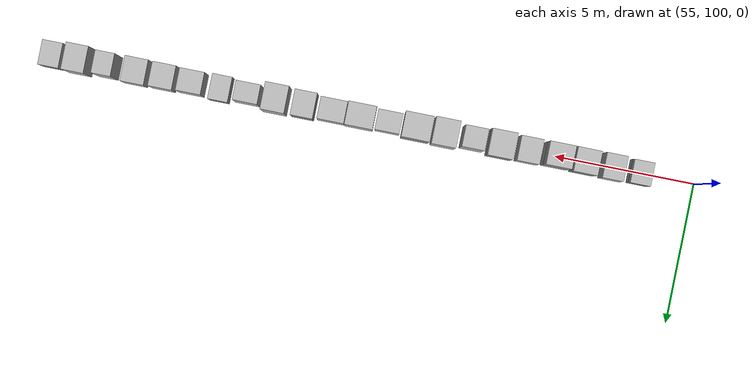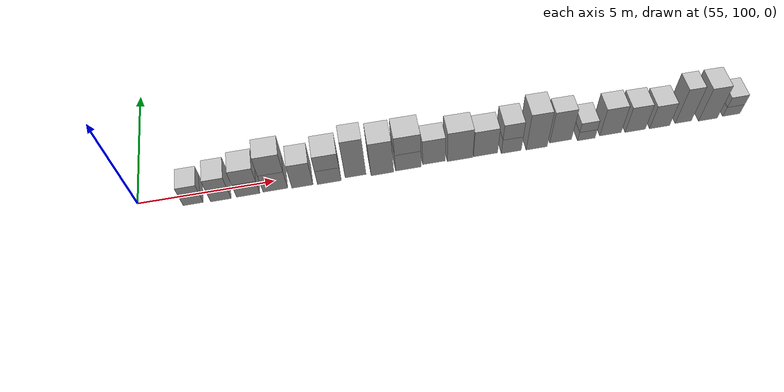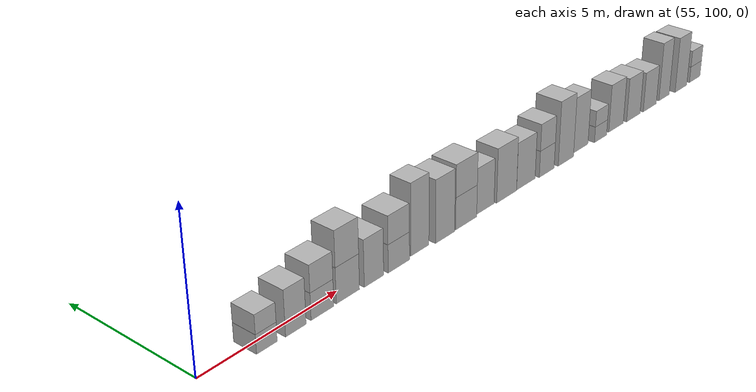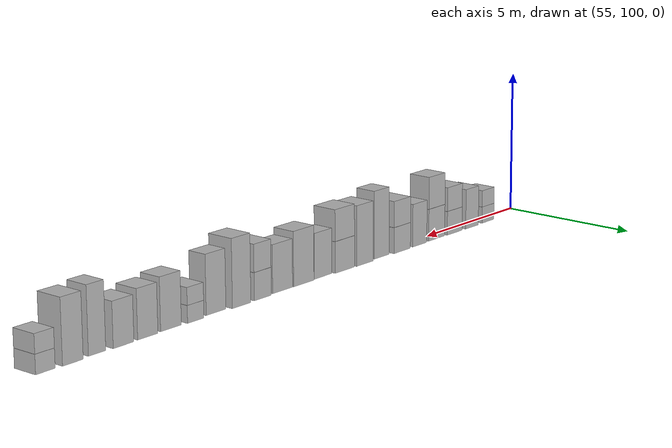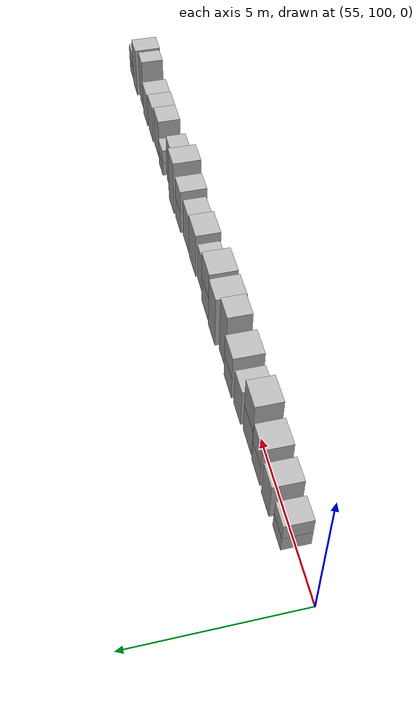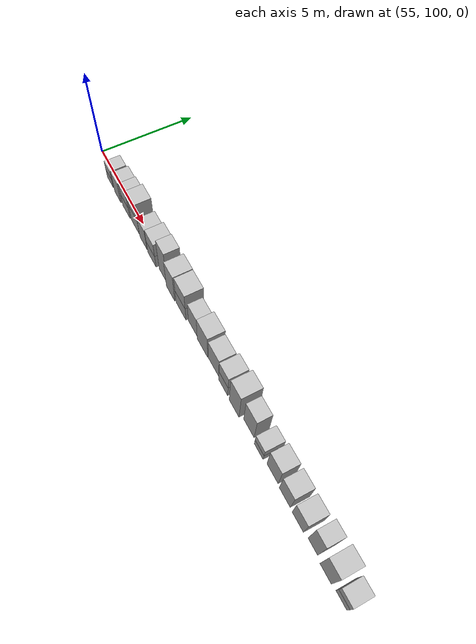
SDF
<sdf version="1.5">
 <world name="default">
  <model name="ground_plane">
   <static>true</static>
   <link name="link">
    <collision name="collision">
     <geometry><plane><normal>0 0 1</normal><size>250 250</size></plane></geometry>
     <surface><friction><ode><mu>1</mu><mu2>1</mu2></ode></friction></surface>
    </collision>
    <visual name="grass">
     <cast_shadows>false</cast_shadows>
     <geometry><mesh><uri>file://grass_plane/meshes/grass_plane.dae</uri></mesh></geometry>
    </visual>
   </link>
  </model>
  <model name="Cardboard_box_157">
   <link name="link_0">
    <pose>57 100 0 0 0 0</pose>
    <inertial>
     <mass>1</mass>
     <inertia>
      <ixx>0.166667</ixx>
      <ixy>0</ixy>
      <ixz>0</ixz>
      <iyy>0.166667</iyy>
      <iyz>0</iyz>
      <izz>0.166667</izz>
     </inertia>
    </inertial>
    <collision name="collision">
     <geometry>
      <mesh>
       <uri>model://Cardboard_box/meshes/cardboard_box.dae</uri>
       <scale>1.81420809748 2.10381561603 1.49682544511</scale>
      </mesh>
     </geometry>
    </collision>
    <visual name="visual">
     <geometry>
      <mesh>
       <uri>model://Cardboard_box/meshes/cardboard_box.dae</uri>
       <scale>1.81420809748 2.10381561603 1.49682544511</scale>
      </mesh>
     </geometry>
    </visual>
   </link>
   <static>1</static>
  </model>
  <model name="Cardboard_box_top_157">
   <link name="link_0">
    <pose>57 100 0.598730178044 0 0 0</pose>
    <inertial>
     <mass>1</mass>
     <inertia>
      <ixx>0.166667</ixx>
      <ixy>0</ixy>
      <ixz>0</ixz>
      <iyy>0.166667</iyy>
      <iyz>0</iyz>
      <izz>0.166667</izz>
     </inertia>
    </inertial>
    <collision name="collision">
     <geometry>
      <mesh>
       <uri>model://Cardboard_box/meshes/cardboard_box.dae</uri>
       <scale>1.81420809748 2.10381561603 1.49682544511</scale>
      </mesh>
     </geometry>
    </collision>
    <visual name="visual">
     <geometry>
      <mesh>
       <uri>model://Cardboard_box/meshes/cardboard_box.dae</uri>
       <scale>1.81420809748 2.10381561603 1.49682544511</scale>
      </mesh>
     </geometry>
    </visual>
   </link>
   <static>1</static>
  </model>
  <model name="Cardboard_box_158">
   <link name="link_0">
    <pose>58 100 0 0 0 0</pose>
    <inertial>
     <mass>1</mass>
     <inertia>
      <ixx>0.166667</ixx>
      <ixy>0</ixy>
      <ixz>0</ixz>
      <iyy>0.166667</iyy>
      <iyz>0</iyz>
      <izz>0.166667</izz>
     </inertia>
    </inertial>
    <collision name="collision">
     <geometry>
      <mesh>
       <uri>model://Cardboard_box/meshes/cardboard_box.dae</uri>
       <scale>1.87514105076 2.2593879428 3.61103689173</scale>
      </mesh>
     </geometry>
    </collision>
    <visual name="visual">
     <geometry>
      <mesh>
       <uri>model://Cardboard_box/meshes/cardboard_box.dae</uri>
       <scale>1.87514105076 2.2593879428 3.61103689173</scale>
      </mesh>
     </geometry>
    </visual>
   </link>
   <static>1</static>
  </model>
  <model name="Cardboard_box_159">
   <link name="link_0">
    <pose>59 100 0 0 0 0</pose>
    <inertial>
     <mass>1</mass>
     <inertia>
      <ixx>0.166667</ixx>
      <ixy>0</ixy>
      <ixz>0</ixz>
      <iyy>0.166667</iyy>
      <iyz>0</iyz>
      <izz>0.166667</izz>
     </inertia>
    </inertial>
    <collision name="collision">
     <geometry>
      <mesh>
       <uri>model://Cardboard_box/meshes/cardboard_box.dae</uri>
       <scale>2.15328613398 2.17790629205 2.13629660906</scale>
      </mesh>
     </geometry>
    </collision>
    <visual name="visual">
     <geometry>
      <mesh>
       <uri>model://Cardboard_box/meshes/cardboard_box.dae</uri>
       <scale>2.15328613398 2.17790629205 2.13629660906</scale>
      </mesh>
     </geometry>
    </visual>
   </link>
   <static>1</static>
  </model>
  <model name="Cardboard_box_top_159">
   <link name="link_0">
    <pose>59 100 0.854518643624 0 0 0</pose>
    <inertial>
     <mass>1</mass>
     <inertia>
      <ixx>0.166667</ixx>
      <ixy>0</ixy>
      <ixz>0</ixz>
      <iyy>0.166667</iyy>
      <iyz>0</iyz>
      <izz>0.166667</izz>
     </inertia>
    </inertial>
    <collision name="collision">
     <geometry>
      <mesh>
       <uri>model://Cardboard_box/meshes/cardboard_box.dae</uri>
       <scale>2.15328613398 2.17790629205 2.13629660906</scale>
      </mesh>
     </geometry>
    </collision>
    <visual name="visual">
     <geometry>
      <mesh>
       <uri>model://Cardboard_box/meshes/cardboard_box.dae</uri>
       <scale>2.15328613398 2.17790629205 2.13629660906</scale>
      </mesh>
     </geometry>
    </visual>
   </link>
   <static>1</static>
  </model>
  <model name="Cardboard_box_160">
   <link name="link_0">
    <pose>60 100 0 0 0 0</pose>
    <inertial>
     <mass>1</mass>
     <inertia>
      <ixx>0.166667</ixx>
      <ixy>0</ixy>
      <ixz>0</ixz>
      <iyy>0.166667</iyy>
      <iyz>0</iyz>
      <izz>0.166667</izz>
     </inertia>
    </inertial>
    <collision name="collision">
     <geometry>
      <mesh>
       <uri>model://Cardboard_box/meshes/cardboard_box.dae</uri>
       <scale>2.28505861333 2.05998489167 2.84069622091</scale>
      </mesh>
     </geometry>
    </collision>
    <visual name="visual">
     <geometry>
      <mesh>
       <uri>model://Cardboard_box/meshes/cardboard_box.dae</uri>
       <scale>2.28505861333 2.05998489167 2.84069622091</scale>
      </mesh>
     </geometry>
    </visual>
   </link>
   <static>1</static>
  </model>
  <model name="Cardboard_box_top_160">
   <link name="link_0">
    <pose>60 100 1.13627848837 0 0 0</pose>
    <inertial>
     <mass>1</mass>
     <inertia>
      <ixx>0.166667</ixx>
      <ixy>0</ixy>
      <ixz>0</ixz>
      <iyy>0.166667</iyy>
      <iyz>0</iyz>
      <izz>0.166667</izz>
     </inertia>
    </inertial>
    <collision name="collision">
     <geometry>
      <mesh>
       <uri>model://Cardboard_box/meshes/cardboard_box.dae</uri>
       <scale>2.28505861333 2.05998489167 2.84069622091</scale>
      </mesh>
     </geometry>
    </collision>
    <visual name="visual">
     <geometry>
      <mesh>
       <uri>model://Cardboard_box/meshes/cardboard_box.dae</uri>
       <scale>2.28505861333 2.05998489167 2.84069622091</scale>
      </mesh>
     </geometry>
    </visual>
   </link>
   <static>1</static>
  </model>
  <model name="Cardboard_box_161">
   <link name="link_0">
    <pose>61 100 0 0 0 0</pose>
    <inertial>
     <mass>1</mass>
     <inertia>
      <ixx>0.166667</ixx>
      <ixy>0</ixy>
      <ixz>0</ixz>
      <iyy>0.166667</iyy>
      <iyz>0</iyz>
      <izz>0.166667</izz>
     </inertia>
    </inertial>
    <collision name="collision">
     <geometry>
      <mesh>
       <uri>model://Cardboard_box/meshes/cardboard_box.dae</uri>
       <scale>1.9775556429 2.23507939977 3.77298976431</scale>
      </mesh>
     </geometry>
    </collision>
    <visual name="visual">
     <geometry>
      <mesh>
       <uri>model://Cardboard_box/meshes/cardboard_box.dae</uri>
       <scale>1.9775556429 2.23507939977 3.77298976431</scale>
      </mesh>
     </geometry>
    </visual>
   </link>
   <static>1</static>
  </model>
  <model name="Cardboard_box_162">
   <link name="link_0">
    <pose>62 100 0 0 0 0</pose>
    <inertial>
     <mass>1</mass>
     <inertia>
      <ixx>0.166667</ixx>
      <ixy>0</ixy>
      <ixz>0</ixz>
      <iyy>0.166667</iyy>
      <iyz>0</iyz>
      <izz>0.166667</izz>
     </inertia>
    </inertial>
    <collision name="collision">
     <geometry>
      <mesh>
       <uri>model://Cardboard_box/meshes/cardboard_box.dae</uri>
       <scale>2.25082021121 2.36605081054 2.27832228173</scale>
      </mesh>
     </geometry>
    </collision>
    <visual name="visual">
     <geometry>
      <mesh>
       <uri>model://Cardboard_box/meshes/cardboard_box.dae</uri>
       <scale>2.25082021121 2.36605081054 2.27832228173</scale>
      </mesh>
     </geometry>
    </visual>
   </link>
   <static>1</static>
  </model>
  <model name="Cardboard_box_top_162">
   <link name="link_0">
    <pose>62 100 0.911328912691 0 0 0</pose>
    <inertial>
     <mass>1</mass>
     <inertia>
      <ixx>0.166667</ixx>
      <ixy>0</ixy>
      <ixz>0</ixz>
      <iyy>0.166667</iyy>
      <iyz>0</iyz>
      <izz>0.166667</izz>
     </inertia>
    </inertial>
    <collision name="collision">
     <geometry>
      <mesh>
       <uri>model://Cardboard_box/meshes/cardboard_box.dae</uri>
       <scale>2.25082021121 2.36605081054 2.27832228173</scale>
      </mesh>
     </geometry>
    </collision>
    <visual name="visual">
     <geometry>
      <mesh>
       <uri>model://Cardboard_box/meshes/cardboard_box.dae</uri>
       <scale>2.25082021121 2.36605081054 2.27832228173</scale>
      </mesh>
     </geometry>
    </visual>
   </link>
   <static>1</static>
  </model>
  <model name="Cardboard_box_163">
   <link name="link_0">
    <pose>63 100 0 0 0 0</pose>
    <inertial>
     <mass>1</mass>
     <inertia>
      <ixx>0.166667</ixx>
      <ixy>0</ixy>
      <ixz>0</ixz>
      <iyy>0.166667</iyy>
      <iyz>0</iyz>
      <izz>0.166667</izz>
     </inertia>
    </inertial>
    <collision name="collision">
     <geometry>
      <mesh>
       <uri>model://Cardboard_box/meshes/cardboard_box.dae</uri>
       <scale>1.99134031903 1.91318414073 5.89176702969</scale>
      </mesh>
     </geometry>
    </collision>
    <visual name="visual">
     <geometry>
      <mesh>
       <uri>model://Cardboard_box/meshes/cardboard_box.dae</uri>
       <scale>1.99134031903 1.91318414073 5.89176702969</scale>
      </mesh>
     </geometry>
    </visual>
   </link>
   <static>1</static>
  </model>
  <model name="Cardboard_box_164">
   <link name="link_0">
    <pose>64 100 0 0 0 0</pose>
    <inertial>
     <mass>1</mass>
     <inertia>
      <ixx>0.166667</ixx>
      <ixy>0</ixy>
      <ixz>0</ixz>
      <iyy>0.166667</iyy>
      <iyz>0</iyz>
      <izz>0.166667</izz>
     </inertia>
    </inertial>
    <collision name="collision">
     <geometry>
      <mesh>
       <uri>model://Cardboard_box/meshes/cardboard_box.dae</uri>
       <scale>2.16510713637 2.40100795066 5.20261111876</scale>
      </mesh>
     </geometry>
    </collision>
    <visual name="visual">
     <geometry>
      <mesh>
       <uri>model://Cardboard_box/meshes/cardboard_box.dae</uri>
       <scale>2.16510713637 2.40100795066 5.20261111876</scale>
      </mesh>
     </geometry>
    </visual>
   </link>
   <static>1</static>
  </model>
  <model name="Cardboard_box_165">
   <link name="link_0">
    <pose>65 100 0 0 0 0</pose>
    <inertial>
     <mass>1</mass>
     <inertia>
      <ixx>0.166667</ixx>
      <ixy>0</ixy>
      <ixz>0</ixz>
      <iyy>0.166667</iyy>
      <iyz>0</iyz>
      <izz>0.166667</izz>
     </inertia>
    </inertial>
    <collision name="collision">
     <geometry>
      <mesh>
       <uri>model://Cardboard_box/meshes/cardboard_box.dae</uri>
       <scale>2.48320914607 2.26290085305 2.68920703582</scale>
      </mesh>
     </geometry>
    </collision>
    <visual name="visual">
     <geometry>
      <mesh>
       <uri>model://Cardboard_box/meshes/cardboard_box.dae</uri>
       <scale>2.48320914607 2.26290085305 2.68920703582</scale>
      </mesh>
     </geometry>
    </visual>
   </link>
   <static>1</static>
  </model>
  <model name="Cardboard_box_top_165">
   <link name="link_0">
    <pose>65 100 1.07568281433 0 0 0</pose>
    <inertial>
     <mass>1</mass>
     <inertia>
      <ixx>0.166667</ixx>
      <ixy>0</ixy>
      <ixz>0</ixz>
      <iyy>0.166667</iyy>
      <iyz>0</iyz>
      <izz>0.166667</izz>
     </inertia>
    </inertial>
    <collision name="collision">
     <geometry>
      <mesh>
       <uri>model://Cardboard_box/meshes/cardboard_box.dae</uri>
       <scale>2.48320914607 2.26290085305 2.68920703582</scale>
      </mesh>
     </geometry>
    </collision>
    <visual name="visual">
     <geometry>
      <mesh>
       <uri>model://Cardboard_box/meshes/cardboard_box.dae</uri>
       <scale>2.48320914607 2.26290085305 2.68920703582</scale>
      </mesh>
     </geometry>
    </visual>
   </link>
   <static>1</static>
  </model>
  <model name="Cardboard_box_166">
   <link name="link_0">
    <pose>66 100 0 0 0 0</pose>
    <inertial>
     <mass>1</mass>
     <inertia>
      <ixx>0.166667</ixx>
      <ixy>0</ixy>
      <ixz>0</ixz>
      <iyy>0.166667</iyy>
      <iyz>0</iyz>
      <izz>0.166667</izz>
     </inertia>
    </inertial>
    <collision name="collision">
     <geometry>
      <mesh>
       <uri>model://Cardboard_box/meshes/cardboard_box.dae</uri>
       <scale>2.20039333724 1.83339694124 3.85831099505</scale>
      </mesh>
     </geometry>
    </collision>
    <visual name="visual">
     <geometry>
      <mesh>
       <uri>model://Cardboard_box/meshes/cardboard_box.dae</uri>
       <scale>2.20039333724 1.83339694124 3.85831099505</scale>
      </mesh>
     </geometry>
    </visual>
   </link>
   <static>1</static>
  </model>
  <model name="Cardboard_box_167">
   <link name="link_0">
    <pose>67 100 0 0 0 0</pose>
    <inertial>
     <mass>1</mass>
     <inertia>
      <ixx>0.166667</ixx>
      <ixy>0</ixy>
      <ixz>0</ixz>
      <iyy>0.166667</iyy>
      <iyz>0</iyz>
      <izz>0.166667</izz>
     </inertia>
    </inertial>
    <collision name="collision">
     <geometry>
      <mesh>
       <uri>model://Cardboard_box/meshes/cardboard_box.dae</uri>
       <scale>2.49800297952 2.06982349839 4.61272780405</scale>
      </mesh>
     </geometry>
    </collision>
    <visual name="visual">
     <geometry>
      <mesh>
       <uri>model://Cardboard_box/meshes/cardboard_box.dae</uri>
       <scale>2.49800297952 2.06982349839 4.61272780405</scale>
      </mesh>
     </geometry>
    </visual>
   </link>
   <static>1</static>
  </model>
  <model name="Cardboard_box_168">
   <link name="link_0">
    <pose>68 100 0 0 0 0</pose>
    <inertial>
     <mass>1</mass>
     <inertia>
      <ixx>0.166667</ixx>
      <ixy>0</ixy>
      <ixz>0</ixz>
      <iyy>0.166667</iyy>
      <iyz>0</iyz>
      <izz>0.166667</izz>
     </inertia>
    </inertial>
    <collision name="collision">
     <geometry>
      <mesh>
       <uri>model://Cardboard_box/meshes/cardboard_box.dae</uri>
       <scale>2.38917256784 1.97683687255 4.03550090378</scale>
      </mesh>
     </geometry>
    </collision>
    <visual name="visual">
     <geometry>
      <mesh>
       <uri>model://Cardboard_box/meshes/cardboard_box.dae</uri>
       <scale>2.38917256784 1.97683687255 4.03550090378</scale>
      </mesh>
     </geometry>
    </visual>
   </link>
   <static>1</static>
  </model>
  <model name="Cardboard_box_169">
   <link name="link_0">
    <pose>69 100 0 0 0 0</pose>
    <inertial>
     <mass>1</mass>
     <inertia>
      <ixx>0.166667</ixx>
      <ixy>0</ixy>
      <ixz>0</ixz>
      <iyy>0.166667</iyy>
      <iyz>0</iyz>
      <izz>0.166667</izz>
     </inertia>
    </inertial>
    <collision name="collision">
     <geometry>
      <mesh>
       <uri>model://Cardboard_box/meshes/cardboard_box.dae</uri>
       <scale>1.98100161813 2.2942295248 2.29737505421</scale>
      </mesh>
     </geometry>
    </collision>
    <visual name="visual">
     <geometry>
      <mesh>
       <uri>model://Cardboard_box/meshes/cardboard_box.dae</uri>
       <scale>1.98100161813 2.2942295248 2.29737505421</scale>
      </mesh>
     </geometry>
    </visual>
   </link>
   <static>1</static>
  </model>
  <model name="Cardboard_box_top_169">
   <link name="link_0">
    <pose>69 100 0.918950021684 0 0 0</pose>
    <inertial>
     <mass>1</mass>
     <inertia>
      <ixx>0.166667</ixx>
      <ixy>0</ixy>
      <ixz>0</ixz>
      <iyy>0.166667</iyy>
      <iyz>0</iyz>
      <izz>0.166667</izz>
     </inertia>
    </inertial>
    <collision name="collision">
     <geometry>
      <mesh>
       <uri>model://Cardboard_box/meshes/cardboard_box.dae</uri>
       <scale>1.98100161813 2.2942295248 2.29737505421</scale>
      </mesh>
     </geometry>
    </collision>
    <visual name="visual">
     <geometry>
      <mesh>
       <uri>model://Cardboard_box/meshes/cardboard_box.dae</uri>
       <scale>1.98100161813 2.2942295248 2.29737505421</scale>
      </mesh>
     </geometry>
    </visual>
   </link>
   <static>1</static>
  </model>
  <model name="Cardboard_box_170">
   <link name="link_0">
    <pose>70 100 0 0 0 0</pose>
    <inertial>
     <mass>1</mass>
     <inertia>
      <ixx>0.166667</ixx>
      <ixy>0</ixy>
      <ixz>0</ixz>
      <iyy>0.166667</iyy>
      <iyz>0</iyz>
      <izz>0.166667</izz>
     </inertia>
    </inertial>
    <collision name="collision">
     <geometry>
      <mesh>
       <uri>model://Cardboard_box/meshes/cardboard_box.dae</uri>
       <scale>2.10145909895 2.41661046187 5.63940332309</scale>
      </mesh>
     </geometry>
    </collision>
    <visual name="visual">
     <geometry>
      <mesh>
       <uri>model://Cardboard_box/meshes/cardboard_box.dae</uri>
       <scale>2.10145909895 2.41661046187 5.63940332309</scale>
      </mesh>
     </geometry>
    </visual>
   </link>
   <static>1</static>
  </model>
  <model name="Cardboard_box_171">
   <link name="link_0">
    <pose>71 100 0 0 0 0</pose>
    <inertial>
     <mass>1</mass>
     <inertia>
      <ixx>0.166667</ixx>
      <ixy>0</ixy>
      <ixz>0</ixz>
      <iyy>0.166667</iyy>
      <iyz>0</iyz>
      <izz>0.166667</izz>
     </inertia>
    </inertial>
    <collision name="collision">
     <geometry>
      <mesh>
       <uri>model://Cardboard_box/meshes/cardboard_box.dae</uri>
       <scale>2.18775535099 1.72834573184 4.88569953345</scale>
      </mesh>
     </geometry>
    </collision>
    <visual name="visual">
     <geometry>
      <mesh>
       <uri>model://Cardboard_box/meshes/cardboard_box.dae</uri>
       <scale>2.18775535099 1.72834573184 4.88569953345</scale>
      </mesh>
     </geometry>
    </visual>
   </link>
   <static>1</static>
  </model>
  <model name="Cardboard_box_172">
   <link name="link_0">
    <pose>72 100 0 0 0 0</pose>
    <inertial>
     <mass>1</mass>
     <inertia>
      <ixx>0.166667</ixx>
      <ixy>0</ixy>
      <ixz>0</ixz>
      <iyy>0.166667</iyy>
      <iyz>0</iyz>
      <izz>0.166667</izz>
     </inertia>
    </inertial>
    <collision name="collision">
     <geometry>
      <mesh>
       <uri>model://Cardboard_box/meshes/cardboard_box.dae</uri>
       <scale>1.77810968646 2.27432422572 1.41492613479</scale>
      </mesh>
     </geometry>
    </collision>
    <visual name="visual">
     <geometry>
      <mesh>
       <uri>model://Cardboard_box/meshes/cardboard_box.dae</uri>
       <scale>1.77810968646 2.27432422572 1.41492613479</scale>
      </mesh>
     </geometry>
    </visual>
   </link>
   <static>1</static>
  </model>
  <model name="Cardboard_box_top_172">
   <link name="link_0">
    <pose>72 100 0.565970453914 0 0 0</pose>
    <inertial>
     <mass>1</mass>
     <inertia>
      <ixx>0.166667</ixx>
      <ixy>0</ixy>
      <ixz>0</ixz>
      <iyy>0.166667</iyy>
      <iyz>0</iyz>
      <izz>0.166667</izz>
     </inertia>
    </inertial>
    <collision name="collision">
     <geometry>
      <mesh>
       <uri>model://Cardboard_box/meshes/cardboard_box.dae</uri>
       <scale>1.77810968646 2.27432422572 1.41492613479</scale>
      </mesh>
     </geometry>
    </collision>
    <visual name="visual">
     <geometry>
      <mesh>
       <uri>model://Cardboard_box/meshes/cardboard_box.dae</uri>
       <scale>1.77810968646 2.27432422572 1.41492613479</scale>
      </mesh>
     </geometry>
    </visual>
   </link>
   <static>1</static>
  </model>
  <model name="Cardboard_box_173">
   <link name="link_0">
    <pose>73 100 0 0 0 0</pose>
    <inertial>
     <mass>1</mass>
     <inertia>
      <ixx>0.166667</ixx>
      <ixy>0</ixy>
      <ixz>0</ixz>
      <iyy>0.166667</iyy>
      <iyz>0</iyz>
      <izz>0.166667</izz>
     </inertia>
    </inertial>
    <collision name="collision">
     <geometry>
      <mesh>
       <uri>model://Cardboard_box/meshes/cardboard_box.dae</uri>
       <scale>2.1938027066 2.00148322251 4.27043081271</scale>
      </mesh>
     </geometry>
    </collision>
    <visual name="visual">
     <geometry>
      <mesh>
       <uri>model://Cardboard_box/meshes/cardboard_box.dae</uri>
       <scale>2.1938027066 2.00148322251 4.27043081271</scale>
      </mesh>
     </geometry>
    </visual>
   </link>
   <static>1</static>
  </model>
  <model name="Cardboard_box_174">
   <link name="link_0">
    <pose>74 100 0 0 0 0</pose>
    <inertial>
     <mass>1</mass>
     <inertia>
      <ixx>0.166667</ixx>
      <ixy>0</ixy>
      <ixz>0</ixz>
      <iyy>0.166667</iyy>
      <iyz>0</iyz>
      <izz>0.166667</izz>
     </inertia>
    </inertial>
    <collision name="collision">
     <geometry>
      <mesh>
       <uri>model://Cardboard_box/meshes/cardboard_box.dae</uri>
       <scale>2.0891267357 2.17242519803 3.96543093137</scale>
      </mesh>
     </geometry>
    </collision>
    <visual name="visual">
     <geometry>
      <mesh>
       <uri>model://Cardboard_box/meshes/cardboard_box.dae</uri>
       <scale>2.0891267357 2.17242519803 3.96543093137</scale>
      </mesh>
     </geometry>
    </visual>
   </link>
   <static>1</static>
  </model>
  <model name="Cardboard_box_175">
   <link name="link_0">
    <pose>75 100 0 0 0 0</pose>
    <inertial>
     <mass>1</mass>
     <inertia>
      <ixx>0.166667</ixx>
      <ixy>0</ixy>
      <ixz>0</ixz>
      <iyy>0.166667</iyy>
      <iyz>0</iyz>
      <izz>0.166667</izz>
     </inertia>
    </inertial>
    <collision name="collision">
     <geometry>
      <mesh>
       <uri>model://Cardboard_box/meshes/cardboard_box.dae</uri>
       <scale>2.08487131137 2.27100396058 3.61488294744</scale>
      </mesh>
     </geometry>
    </collision>
    <visual name="visual">
     <geometry>
      <mesh>
       <uri>model://Cardboard_box/meshes/cardboard_box.dae</uri>
       <scale>2.08487131137 2.27100396058 3.61488294744</scale>
      </mesh>
     </geometry>
    </visual>
   </link>
   <static>1</static>
  </model>
  <model name="Cardboard_box_176">
   <link name="link_0">
    <pose>76 100 0 0 0 0</pose>
    <inertial>
     <mass>1</mass>
     <inertia>
      <ixx>0.166667</ixx>
      <ixy>0</ixy>
      <ixz>0</ixz>
      <iyy>0.166667</iyy>
      <iyz>0</iyz>
      <izz>0.166667</izz>
     </inertia>
    </inertial>
    <collision name="collision">
     <geometry>
      <mesh>
       <uri>model://Cardboard_box/meshes/cardboard_box.dae</uri>
       <scale>1.70137657625 2.02637972683 5.3755600022</scale>
      </mesh>
     </geometry>
    </collision>
    <visual name="visual">
     <geometry>
      <mesh>
       <uri>model://Cardboard_box/meshes/cardboard_box.dae</uri>
       <scale>1.70137657625 2.02637972683 5.3755600022</scale>
      </mesh>
     </geometry>
    </visual>
   </link>
   <static>1</static>
  </model>
  <model name="Cardboard_box_177">
   <link name="link_0">
    <pose>77 100 0 0 0 0</pose>
    <inertial>
     <mass>1</mass>
     <inertia>
      <ixx>0.166667</ixx>
      <ixy>0</ixy>
      <ixz>0</ixz>
      <iyy>0.166667</iyy>
      <iyz>0</iyz>
      <izz>0.166667</izz>
     </inertia>
    </inertial>
    <collision name="collision">
     <geometry>
      <mesh>
       <uri>model://Cardboard_box/meshes/cardboard_box.dae</uri>
       <scale>1.97665985874 2.39578917431 5.1215907456</scale>
      </mesh>
     </geometry>
    </collision>
    <visual name="visual">
     <geometry>
      <mesh>
       <uri>model://Cardboard_box/meshes/cardboard_box.dae</uri>
       <scale>1.97665985874 2.39578917431 5.1215907456</scale>
      </mesh>
     </geometry>
    </visual>
   </link>
   <static>1</static>
  </model>
  <model name="Cardboard_box_178">
   <link name="link_0">
    <pose>78 100 0 0 0 0</pose>
    <inertial>
     <mass>1</mass>
     <inertia>
      <ixx>0.166667</ixx>
      <ixy>0</ixy>
      <ixz>0</ixz>
      <iyy>0.166667</iyy>
      <iyz>0</iyz>
      <izz>0.166667</izz>
     </inertia>
    </inertial>
    <collision name="collision">
     <geometry>
      <mesh>
       <uri>model://Cardboard_box/meshes/cardboard_box.dae</uri>
       <scale>1.8260007767 2.22386245318 1.50840076934</scale>
      </mesh>
     </geometry>
    </collision>
    <visual name="visual">
     <geometry>
      <mesh>
       <uri>model://Cardboard_box/meshes/cardboard_box.dae</uri>
       <scale>1.8260007767 2.22386245318 1.50840076934</scale>
      </mesh>
     </geometry>
    </visual>
   </link>
   <static>1</static>
  </model>
  <model name="Cardboard_box_top_178">
   <link name="link_0">
    <pose>78 100 0.603360307734 0 0 0</pose>
    <inertial>
     <mass>1</mass>
     <inertia>
      <ixx>0.166667</ixx>
      <ixy>0</ixy>
      <ixz>0</ixz>
      <iyy>0.166667</iyy>
      <iyz>0</iyz>
      <izz>0.166667</izz>
     </inertia>
    </inertial>
    <collision name="collision">
     <geometry>
      <mesh>
       <uri>model://Cardboard_box/meshes/cardboard_box.dae</uri>
       <scale>1.8260007767 2.22386245318 1.50840076934</scale>
      </mesh>
     </geometry>
    </collision>
    <visual name="visual">
     <geometry>
      <mesh>
       <uri>model://Cardboard_box/meshes/cardboard_box.dae</uri>
       <scale>1.8260007767 2.22386245318 1.50840076934</scale>
      </mesh>
     </geometry>
    </visual>
   </link>
   <static>1</static>
  </model>
 </world>
</sdf>
